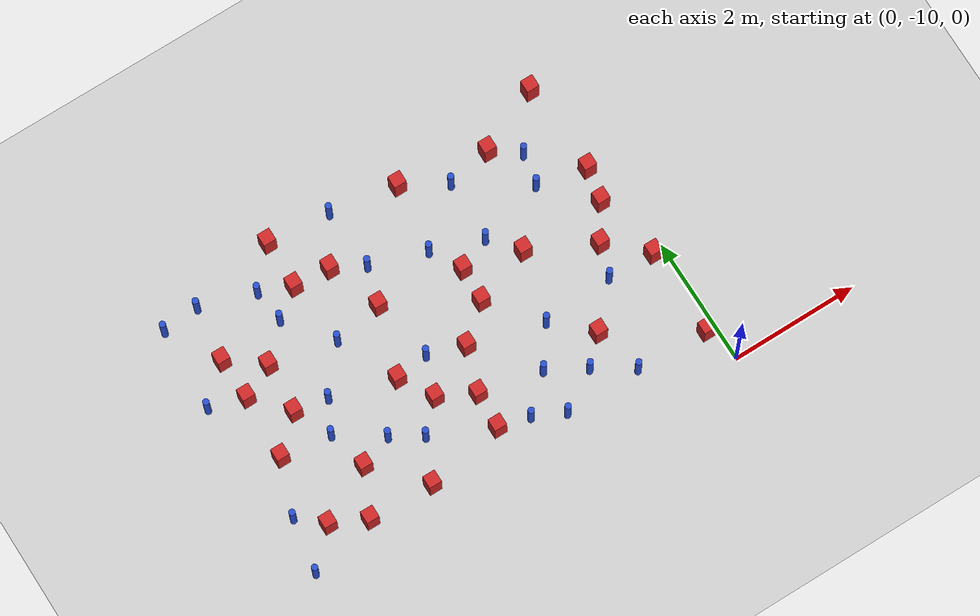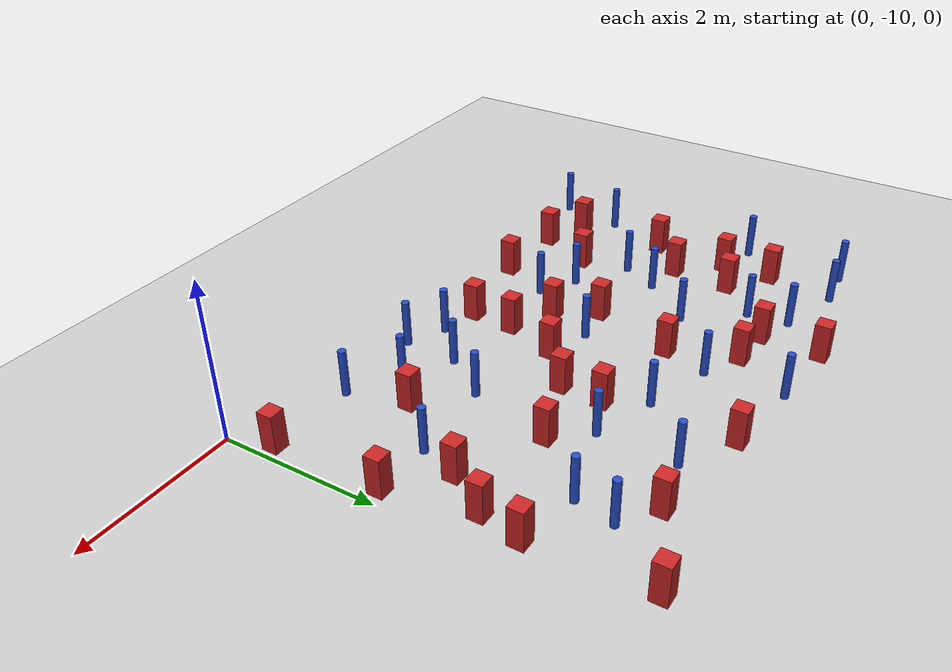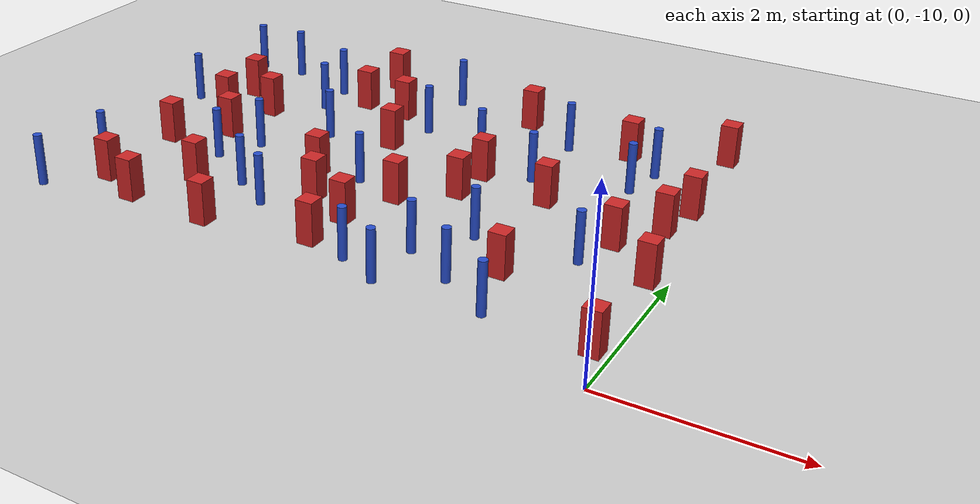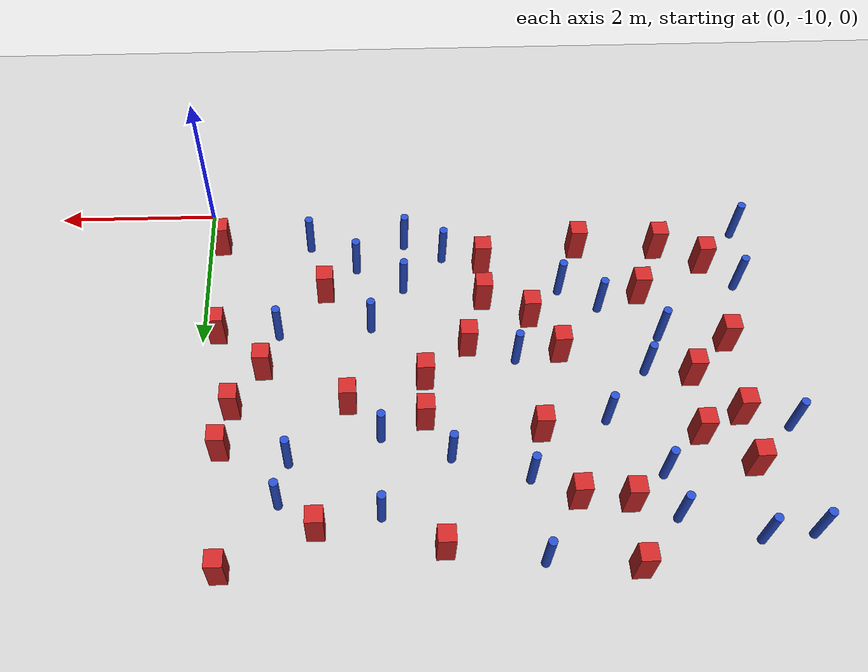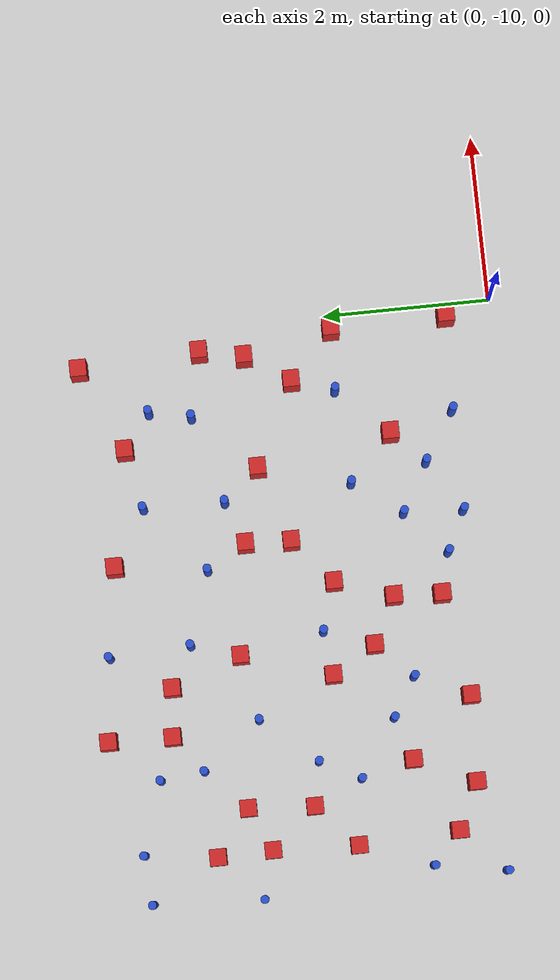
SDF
<sdf version="1.6">
 <world name="default">
  <model name="ground_plane">
   <static>1</static>
   <link name="link">
    <collision name="collision">
     <geometry><plane><normal>0 0 1</normal><size>100 100</size></plane></geometry>
     <surface><friction><ode><mu>100</mu><mu2>50</mu2></ode></friction></surface>
    </collision>
    <visual name="visual">
     <cast_shadows>0</cast_shadows>
     <geometry><plane><normal>0 0 1</normal><size>100 100</size></plane></geometry>
     <material>
      <ambient>1.0 1.0 1.0 1.0</ambient>
      <diffuse>0.8 0.8 0.8 1.0</diffuse>
      <specular>0.01 0.01 0.01 1.000000</specular>
     </material>
    </visual>
   </link>
  </model>
  <model name="square_post_obstacle6">
   <static>true</static>
   <pose>-0.314412904541 -6.473569721 1.91545236811e-07 -7.35059704564e-06 1.12565212e-07 2.39332434364e-05</pose>
   <link name="link">
    <pose>0 0 0.25 0 -0 0</pose>
    <inertial>
     <mass>100</mass>
     <inertia>
      <ixx>0.166667</ixx>
      <ixy>0</ixy>
      <ixz>0</ixz>
      <iyy>0.166667</iyy>
      <iyz>0</iyz>
      <izz>0.166667</izz>
     </inertia>
    </inertial>
    <collision name="collision"><geometry><box><size>.2 .2 .5</size></box></geometry></collision>
    <visual name="visual">
     <geometry><box><size>.2 .2 .5</size></box></geometry>
     <material>
      <script><name>Gazebo/Red</name><uri>file://media/materials/scripts/gazebo.material</uri></script>
     </material>
    </visual>
   </link>
  </model>
  <model name="square_post_obstacle8">
   <static>true</static>
   <pose>-5.78072870334 -6.53050007422 1.91545236811e-07 -7.35059704564e-06 1.12565212e-07 2.39332434364e-05</pose>
   <link name="link">
    <pose>0 0 0.25 0 -0 0</pose>
    <inertial>
     <mass>100</mass>
     <inertia>
      <ixx>0.166667</ixx>
      <ixy>0</ixy>
      <ixz>0</ixz>
      <iyy>0.166667</iyy>
      <iyz>0</iyz>
      <izz>0.166667</izz>
     </inertia>
    </inertial>
    <collision name="collision"><geometry><box><size>.2 .2 .5</size></box></geometry></collision>
    <visual name="visual">
     <geometry><box><size>.2 .2 .5</size></box></geometry>
     <material>
      <script><name>Gazebo/Red</name><uri>file://media/materials/scripts/gazebo.material</uri></script>
     </material>
    </visual>
   </link>
  </model>
  <model name="square_post_obstacle11">
   <static>true</static>
   <pose>-1.40964956682 -5.48230653608 1.91545236811e-07 -7.35059704564e-06 1.12565212e-07 2.39332434364e-05</pose>
   <link name="link">
    <pose>0 0 0.25 0 -0 0</pose>
    <inertial>
     <mass>100</mass>
     <inertia>
      <ixx>0.166667</ixx>
      <ixy>0</ixy>
      <ixz>0</ixz>
      <iyy>0.166667</iyy>
      <iyz>0</iyz>
      <izz>0.166667</izz>
     </inertia>
    </inertial>
    <collision name="collision"><geometry><box><size>.2 .2 .5</size></box></geometry></collision>
    <visual name="visual">
     <geometry><box><size>.2 .2 .5</size></box></geometry>
     <material>
      <script><name>Gazebo/Red</name><uri>file://media/materials/scripts/gazebo.material</uri></script>
     </material>
    </visual>
   </link>
  </model>
  <model name="square_post_obstacle16">
   <static>true</static>
   <pose>-6.29691629404 -6.77360591262 1.91545236811e-07 -7.35059704564e-06 1.12565212e-07 2.39332434364e-05</pose>
   <link name="link">
    <pose>0 0 0.25 0 -0 0</pose>
    <inertial>
     <mass>100</mass>
     <inertia>
      <ixx>0.166667</ixx>
      <ixy>0</ixy>
      <ixz>0</ixz>
      <iyy>0.166667</iyy>
      <iyz>0</iyz>
      <izz>0.166667</izz>
     </inertia>
    </inertial>
    <collision name="collision"><geometry><box><size>.2 .2 .5</size></box></geometry></collision>
    <visual name="visual">
     <geometry><box><size>.2 .2 .5</size></box></geometry>
     <material>
      <script><name>Gazebo/Red</name><uri>file://media/materials/scripts/gazebo.material</uri></script>
     </material>
    </visual>
   </link>
  </model>
  <model name="square_post_obstacle20">
   <static>true</static>
   <pose>-0.168599659876 -9.45162408497 1.91545236811e-07 -7.35059704564e-06 1.12565212e-07 2.39332434364e-05</pose>
   <link name="link">
    <pose>0 0 0.25 0 -0 0</pose>
    <inertial>
     <mass>100</mass>
     <inertia>
      <ixx>0.166667</ixx>
      <ixy>0</ixy>
      <ixz>0</ixz>
      <iyy>0.166667</iyy>
      <iyz>0</iyz>
      <izz>0.166667</izz>
     </inertia>
    </inertial>
    <collision name="collision"><geometry><box><size>.2 .2 .5</size></box></geometry></collision>
    <visual name="visual">
     <geometry><box><size>.2 .2 .5</size></box></geometry>
     <material>
      <script><name>Gazebo/Red</name><uri>file://media/materials/scripts/gazebo.material</uri></script>
     </material>
    </visual>
   </link>
  </model>
  <model name="pole_obstacle16">
   <static>true</static>
   <pose>-0.988957043239 -5.80576864988 7.38925637345e-09 -8.47170692799e-08 1.2497676509e-08 -1.74513093015e-07</pose>
   <link name="link">
    <pose>0 0 0.3 0 -0 0</pose>
    <inertial>
     <mass>1</mass>
     <inertia><ixx>0.145833</ixx><ixy>0</ixy><ixz>0</ixz><iyy>0.145833</iyy><iyz>0</iyz><izz>0.125</izz></inertia>
    </inertial>
    <collision name="collision">
     <geometry><cylinder><radius>0.05</radius><length>.6</length></cylinder></geometry>
    </collision>
    <visual name="visual">
     <geometry><cylinder><radius>0.05</radius><length>.6</length></cylinder></geometry>
     <material>
      <script><name>Gazebo/Blue</name><uri>file://media/materials/scripts/gazebo.material</uri></script>
     </material>
    </visual>
   </link>
  </model>
  <model name="square_post_obstacle26">
   <static>true</static>
   <pose>-3.97675487814 -6.61443142377 1.91545236811e-07 -7.35059704564e-06 1.12565212e-07 2.39332434364e-05</pose>
   <link name="link">
    <pose>0 0 0.25 0 -0 0</pose>
    <inertial>
     <mass>100</mass>
     <inertia>
      <ixx>0.166667</ixx>
      <ixy>0</ixy>
      <ixz>0</ixz>
      <iyy>0.166667</iyy>
      <iyz>0</iyz>
      <izz>0.166667</izz>
     </inertia>
    </inertial>
    <collision name="collision"><geometry><box><size>.2 .2 .5</size></box></geometry></collision>
    <visual name="visual">
     <geometry><box><size>.2 .2 .5</size></box></geometry>
     <material>
      <script><name>Gazebo/Red</name><uri>file://media/materials/scripts/gazebo.material</uri></script>
     </material>
    </visual>
   </link>
  </model>
  <model name="pole_obstacle18">
   <static>true</static>
   <pose>-1.30812867403 -9.41330701959 7.38925637345e-09 -8.47170692798e-08 1.24976764881e-08 -1.74513093027e-07</pose>
   <link name="link">
    <pose>0 0 0.3 0 -0 0</pose>
    <inertial>
     <mass>1</mass>
     <inertia><ixx>0.145833</ixx><ixy>0</ixy><ixz>0</ixz><iyy>0.145833</iyy><iyz>0</iyz><izz>0.125</izz></inertia>
    </inertial>
    <collision name="collision">
     <geometry><cylinder><radius>0.05</radius><length>.6</length></cylinder></geometry>
    </collision>
    <visual name="visual">
     <geometry><cylinder><radius>0.05</radius><length>.6</length></cylinder></geometry>
     <material>
      <script><name>Gazebo/Blue</name><uri>file://media/materials/scripts/gazebo.material</uri></script>
     </material>
    </visual>
   </link>
  </model>
  <model name="pole_obstacle24">
   <static>true</static>
   <pose>-3.85660867176 -5.06886521838 7.38925637345e-09 -8.47170692794e-08 1.24976764468e-08 -1.7451309304e-07</pose>
   <link name="link">
    <pose>0 0 0.3 0 -0 0</pose>
    <inertial>
     <mass>1</mass>
     <inertia><ixx>0.145833</ixx><ixy>0</ixy><ixz>0</ixz><iyy>0.145833</iyy><iyz>0</iyz><izz>0.125</izz></inertia>
    </inertial>
    <collision name="collision">
     <geometry><cylinder><radius>0.05</radius><length>.6</length></cylinder></geometry>
    </collision>
    <visual name="visual">
     <geometry><cylinder><radius>0.05</radius><length>.6</length></cylinder></geometry>
     <material>
      <script><name>Gazebo/Blue</name><uri>file://media/materials/scripts/gazebo.material</uri></script>
     </material>
    </visual>
   </link>
  </model>
  <model name="pole_obstacle25">
   <static>true</static>
   <pose>-0.934979429972 -8.04584384701 7.38925637345e-09 -8.47170692807e-08 1.24976765559e-08 -1.74513093001e-07</pose>
   <link name="link">
    <pose>0 0 0.3 0 -0 0</pose>
    <inertial>
     <mass>1</mass>
     <inertia><ixx>0.145833</ixx><ixy>0</ixy><ixz>0</ixz><iyy>0.145833</iyy><iyz>0</iyz><izz>0.125</izz></inertia>
    </inertial>
    <collision name="collision">
     <geometry><cylinder><radius>0.05</radius><length>.6</length></cylinder></geometry>
    </collision>
    <visual name="visual">
     <geometry><cylinder><radius>0.05</radius><length>.6</length></cylinder></geometry>
     <material>
      <script><name>Gazebo/Blue</name><uri>file://media/materials/scripts/gazebo.material</uri></script>
     </material>
    </visual>
   </link>
  </model>
  <model name="square_post_obstacle33">
   <static>true</static>
   <pose>-4.31258937845 -7.6849698161 1.91545236811e-07 -7.35059704564e-06 1.12565212e-07 2.39332434364e-05</pose>
   <link name="link">
    <pose>0 0 0.25 0 -0 0</pose>
    <inertial>
     <mass>100</mass>
     <inertia>
      <ixx>0.166667</ixx>
      <ixy>0</ixy>
      <ixz>0</ixz>
      <iyy>0.166667</iyy>
      <iyz>0</iyz>
      <izz>0.166667</izz>
     </inertia>
    </inertial>
    <collision name="collision"><geometry><box><size>.2 .2 .5</size></box></geometry></collision>
    <visual name="visual">
     <geometry><box><size>.2 .2 .5</size></box></geometry>
     <material>
      <script><name>Gazebo/Red</name><uri>file://media/materials/scripts/gazebo.material</uri></script>
     </material>
    </visual>
   </link>
  </model>
  <model name="square_post_obstacle34">
   <static>true</static>
   <pose>-2.67959772439 -7.34721726852 1.91545236811e-07 -7.35059704564e-06 1.12565212e-07 2.39332434364e-05</pose>
   <link name="link">
    <pose>0 0 0.25 0 -0 0</pose>
    <inertial>
     <mass>100</mass>
     <inertia>
      <ixx>0.166667</ixx>
      <ixy>0</ixy>
      <ixz>0</ixz>
      <iyy>0.166667</iyy>
      <iyz>0</iyz>
      <izz>0.166667</izz>
     </inertia>
    </inertial>
    <collision name="collision"><geometry><box><size>.2 .2 .5</size></box></geometry></collision>
    <visual name="visual">
     <geometry><box><size>.2 .2 .5</size></box></geometry>
     <material>
      <script><name>Gazebo/Red</name><uri>file://media/materials/scripts/gazebo.material</uri></script>
     </material>
    </visual>
   </link>
  </model>
  <model name="square_post_obstacle44">
   <static>true</static>
   <pose>-4.84492656998 -4.96853906696 1.91545236811e-07 -7.35059704564e-06 1.12565212e-07 2.39332434364e-05</pose>
   <link name="link">
    <pose>0 0 0.25 0 -0 0</pose>
    <inertial>
     <mass>100</mass>
     <inertia>
      <ixx>0.166667</ixx>
      <ixy>0</ixy>
      <ixz>0</ixz>
      <iyy>0.166667</iyy>
      <iyz>0</iyz>
      <izz>0.166667</izz>
     </inertia>
    </inertial>
    <collision name="collision"><geometry><box><size>.2 .2 .5</size></box></geometry></collision>
    <visual name="visual">
     <geometry><box><size>.2 .2 .5</size></box></geometry>
     <material>
      <script><name>Gazebo/Red</name><uri>file://media/materials/scripts/gazebo.material</uri></script>
     </material>
    </visual>
   </link>
  </model>
  <model name="square_post_obstacle51">
   <static>true</static>
   <pose>-4.71019757369 -9.27618763411 1.91545236811e-07 -7.35059704564e-06 1.12565212e-07 2.39332434364e-05</pose>
   <link name="link">
    <pose>0 0 0.25 0 -0 0</pose>
    <inertial>
     <mass>100</mass>
     <inertia>
      <ixx>0.166667</ixx>
      <ixy>0</ixy>
      <ixz>0</ixz>
      <iyy>0.166667</iyy>
      <iyz>0</iyz>
      <izz>0.166667</izz>
     </inertia>
    </inertial>
    <collision name="collision"><geometry><box><size>.2 .2 .5</size></box></geometry></collision>
    <visual name="visual">
     <geometry><box><size>.2 .2 .5</size></box></geometry>
     <material>
      <script><name>Gazebo/Red</name><uri>file://media/materials/scripts/gazebo.material</uri></script>
     </material>
    </visual>
   </link>
  </model>
  <model name="square_post_obstacle54">
   <static>true</static>
   <pose>-5.39855343872 -8.52354060329 1.91545236811e-07 -7.35059704564e-06 1.12565212e-07 2.39332434364e-05</pose>
   <link name="link">
    <pose>0 0 0.25 0 -0 0</pose>
    <inertial>
     <mass>100</mass>
     <inertia>
      <ixx>0.166667</ixx>
      <ixy>0</ixy>
      <ixz>0</ixz>
      <iyy>0.166667</iyy>
      <iyz>0</iyz>
      <izz>0.166667</izz>
     </inertia>
    </inertial>
    <collision name="collision"><geometry><box><size>.2 .2 .5</size></box></geometry></collision>
    <visual name="visual">
     <geometry><box><size>.2 .2 .5</size></box></geometry>
     <material>
      <script><name>Gazebo/Red</name><uri>file://media/materials/scripts/gazebo.material</uri></script>
     </material>
    </visual>
   </link>
  </model>
  <model name="square_post_obstacle79">
   <static>true</static>
   <pose>-4.86078657247 -5.72435086123 1.91545236811e-07 -7.35059704564e-06 1.12565212e-07 2.39332434364e-05</pose>
   <link name="link">
    <pose>0 0 0.25 0 -0 0</pose>
    <inertial>
     <mass>100</mass>
     <inertia>
      <ixx>0.166667</ixx>
      <ixy>0</ixy>
      <ixz>0</ixz>
      <iyy>0.166667</iyy>
      <iyz>0</iyz>
      <izz>0.166667</izz>
     </inertia>
    </inertial>
    <collision name="collision"><geometry><box><size>.2 .2 .5</size></box></geometry></collision>
    <visual name="visual">
     <geometry><box><size>.2 .2 .5</size></box></geometry>
     <material>
      <script><name>Gazebo/Red</name><uri>file://media/materials/scripts/gazebo.material</uri></script>
     </material>
    </visual>
   </link>
  </model>
  <model name="pole_obstacle83">
   <static>true</static>
   <pose>-6.80312424011 -9.49591714387 7.38925637345e-09 -8.471706928e-08 1.24976765081e-08 -1.74513093015e-07</pose>
   <link name="link">
    <pose>0 0 0.3 0 -0 0</pose>
    <inertial>
     <mass>1</mass>
     <inertia><ixx>0.145833</ixx><ixy>0</ixy><ixz>0</ixz><iyy>0.145833</iyy><iyz>0</iyz><izz>0.125</izz></inertia>
    </inertial>
    <collision name="collision">
     <geometry><cylinder><radius>0.05</radius><length>.6</length></cylinder></geometry>
    </collision>
    <visual name="visual">
     <geometry><cylinder><radius>0.05</radius><length>.6</length></cylinder></geometry>
     <material>
      <script><name>Gazebo/Blue</name><uri>file://media/materials/scripts/gazebo.material</uri></script>
     </material>
    </visual>
   </link>
  </model>
  <model name="pole_obstacle90">
   <static>true</static>
   <pose>-4.75607005969 -6.75959815398 7.38925637345e-09 -8.47170692796e-08 1.24976764786e-08 -1.74513093032e-07</pose>
   <link name="link">
    <pose>0 0 0.3 0 -0 0</pose>
    <inertial>
     <mass>1</mass>
     <inertia><ixx>0.145833</ixx><ixy>0</ixy><ixz>0</ixz><iyy>0.145833</iyy><iyz>0</iyz><izz>0.125</izz></inertia>
    </inertial>
    <collision name="collision">
     <geometry><cylinder><radius>0.05</radius><length>.6</length></cylinder></geometry>
    </collision>
    <visual name="visual">
     <geometry><cylinder><radius>0.05</radius><length>.6</length></cylinder></geometry>
     <material>
      <script><name>Gazebo/Blue</name><uri>file://media/materials/scripts/gazebo.material</uri></script>
     </material>
    </visual>
   </link>
  </model>
  <model name="pole_obstacle93">
   <static>true</static>
   <pose>-5.35724060562 -5.53326961515 7.38925637345e-09 -8.47170692796e-08 1.24976764786e-08 -1.74513093032e-07</pose>
   <link name="link">
    <pose>0 0 0.3 0 -0 0</pose>
    <inertial>
     <mass>1</mass>
     <inertia><ixx>0.145833</ixx><ixy>0</ixy><ixz>0</ixz><iyy>0.145833</iyy><iyz>0</iyz><izz>0.125</izz></inertia>
    </inertial>
    <collision name="collision">
     <geometry><cylinder><radius>0.05</radius><length>.6</length></cylinder></geometry>
    </collision>
    <visual name="visual">
     <geometry><cylinder><radius>0.05</radius><length>.6</length></cylinder></geometry>
     <material>
      <script><name>Gazebo/Blue</name><uri>file://media/materials/scripts/gazebo.material</uri></script>
     </material>
    </visual>
   </link>
  </model>
  <model name="square_post_obstacle87">
   <static>true</static>
   <pose>-0.768279841867 -7.53531447641 1.91545236811e-07 -7.35059704564e-06 1.12565212e-07 2.39332434364e-05</pose>
   <link name="link">
    <pose>0 0 0.25 0 -0 0</pose>
    <inertial>
     <mass>100</mass>
     <inertia>
      <ixx>0.166667</ixx>
      <ixy>0</ixy>
      <ixz>0</ixz>
      <iyy>0.166667</iyy>
      <iyz>0</iyz>
      <izz>0.166667</izz>
     </inertia>
    </inertial>
    <collision name="collision"><geometry><box><size>.2 .2 .5</size></box></geometry></collision>
    <visual name="visual">
     <geometry><box><size>.2 .2 .5</size></box></geometry>
     <material>
      <script><name>Gazebo/Red</name><uri>file://media/materials/scripts/gazebo.material</uri></script>
     </material>
    </visual>
   </link>
  </model>
  <model name="pole_obstacle98">
   <static>true</static>
   <pose>-2.93355644269 -6.32455213967 7.38925637345e-09 -8.47170692798e-08 1.24976765033e-08 -1.74513093019e-07</pose>
   <link name="link">
    <pose>0 0 0.3 0 -0 0</pose>
    <inertial>
     <mass>1</mass>
     <inertia><ixx>0.145833</ixx><ixy>0</ixy><ixz>0</ixz><iyy>0.145833</iyy><iyz>0</iyz><izz>0.125</izz></inertia>
    </inertial>
    <collision name="collision">
     <geometry><cylinder><radius>0.05</radius><length>.6</length></cylinder></geometry>
    </collision>
    <visual name="visual">
     <geometry><cylinder><radius>0.05</radius><length>.6</length></cylinder></geometry>
     <material>
      <script><name>Gazebo/Blue</name><uri>file://media/materials/scripts/gazebo.material</uri></script>
     </material>
    </visual>
   </link>
  </model>
  <model name="pole_obstacle104">
   <static>true</static>
   <pose>-2.06164450153 -8.12606021757 7.38925637345e-09 -8.47170692793e-08 1.24976764408e-08 -1.74513093041e-07</pose>
   <link name="link">
    <pose>0 0 0.3 0 -0 0</pose>
    <inertial>
     <mass>1</mass>
     <inertia><ixx>0.145833</ixx><ixy>0</ixy><ixz>0</ixz><iyy>0.145833</iyy><iyz>0</iyz><izz>0.125</izz></inertia>
    </inertial>
    <collision name="collision">
     <geometry><cylinder><radius>0.05</radius><length>.6</length></cylinder></geometry>
    </collision>
    <visual name="visual">
     <geometry><cylinder><radius>0.05</radius><length>.6</length></cylinder></geometry>
     <material>
      <script><name>Gazebo/Blue</name><uri>file://media/materials/scripts/gazebo.material</uri></script>
     </material>
    </visual>
   </link>
  </model>
  <model name="pole_obstacle108">
   <static>true</static>
   <pose>-5.29847077119 -6.0573890956 7.38925637345e-09 -8.47170692796e-08 1.24976764786e-08 -1.74513093032e-07</pose>
   <link name="link">
    <pose>0 0 0.3 0 -0 0</pose>
    <inertial>
     <mass>1</mass>
     <inertia><ixx>0.145833</ixx><ixy>0</ixy><ixz>0</ixz><iyy>0.145833</iyy><iyz>0</iyz><izz>0.125</izz></inertia>
    </inertial>
    <collision name="collision">
     <geometry><cylinder><radius>0.05</radius><length>.6</length></cylinder></geometry>
    </collision>
    <visual name="visual">
     <geometry><cylinder><radius>0.05</radius><length>.6</length></cylinder></geometry>
     <material>
      <script><name>Gazebo/Blue</name><uri>file://media/materials/scripts/gazebo.material</uri></script>
     </material>
    </visual>
   </link>
  </model>
  <model name="pole_obstacle116">
   <static>true</static>
   <pose>-5.56209451328 -7.89873725427 7.38925637345e-09 -8.47170692796e-08 1.24976764786e-08 -1.74513093032e-07</pose>
   <link name="link">
    <pose>0 0 0.3 0 -0 0</pose>
    <inertial>
     <mass>1</mass>
     <inertia><ixx>0.145833</ixx><ixy>0</ixy><ixz>0</ixz><iyy>0.145833</iyy><iyz>0</iyz><izz>0.125</izz></inertia>
    </inertial>
    <collision name="collision">
     <geometry><cylinder><radius>0.05</radius><length>.6</length></cylinder></geometry>
    </collision>
    <visual name="visual">
     <geometry><cylinder><radius>0.05</radius><length>.6</length></cylinder></geometry>
     <material>
      <script><name>Gazebo/Blue</name><uri>file://media/materials/scripts/gazebo.material</uri></script>
     </material>
    </visual>
   </link>
  </model>
  <model name="square_post_obstacle109">
   <static>true</static>
   <pose>-1.77033462593 -7.03571893373 1.91545236811e-07 -7.35059704564e-06 1.12565212e-07 2.39332434364e-05</pose>
   <link name="link">
    <pose>0 0 0.25 0 -0 0</pose>
    <inertial>
     <mass>100</mass>
     <inertia>
      <ixx>0.166667</ixx>
      <ixy>0</ixy>
      <ixz>0</ixz>
      <iyy>0.166667</iyy>
      <iyz>0</iyz>
      <izz>0.166667</izz>
     </inertia>
    </inertial>
    <collision name="collision"><geometry><box><size>.2 .2 .5</size></box></geometry></collision>
    <visual name="visual">
     <geometry><box><size>.2 .2 .5</size></box></geometry>
     <material>
      <script><name>Gazebo/Red</name><uri>file://media/materials/scripts/gazebo.material</uri></script>
     </material>
    </visual>
   </link>
  </model>
  <model name="pole_obstacle121">
   <static>true</static>
   <pose>-1.89489620973 -9.04016715943 7.38925637345e-09 -8.47170692798e-08 1.24976764881e-08 -1.74513093027e-07</pose>
   <link name="link">
    <pose>0 0 0.3 0 -0 0</pose>
    <inertial>
     <mass>1</mass>
     <inertia><ixx>0.145833</ixx><ixy>0</ixy><ixz>0</ixz><iyy>0.145833</iyy><iyz>0</iyz><izz>0.125</izz></inertia>
    </inertial>
    <collision name="collision">
     <geometry><cylinder><radius>0.05</radius><length>.6</length></cylinder></geometry>
    </collision>
    <visual name="visual">
     <geometry><cylinder><radius>0.05</radius><length>.6</length></cylinder></geometry>
     <material>
      <script><name>Gazebo/Blue</name><uri>file://media/materials/scripts/gazebo.material</uri></script>
     </material>
    </visual>
   </link>
  </model>
  <model name="pole_obstacle123">
   <static>true</static>
   <pose>-3.78758304065 -7.61913452715 7.38925637345e-09 -8.47170692798e-08 1.24976765033e-08 -1.74513093019e-07</pose>
   <link name="link">
    <pose>0 0 0.3 0 -0 0</pose>
    <inertial>
     <mass>1</mass>
     <inertia><ixx>0.145833</ixx><ixy>0</ixy><ixz>0</ixz><iyy>0.145833</iyy><iyz>0</iyz><izz>0.125</izz></inertia>
    </inertial>
    <collision name="collision">
     <geometry><cylinder><radius>0.05</radius><length>.6</length></cylinder></geometry>
    </collision>
    <visual name="visual">
     <geometry><cylinder><radius>0.05</radius><length>.6</length></cylinder></geometry>
     <material>
      <script><name>Gazebo/Blue</name><uri>file://media/materials/scripts/gazebo.material</uri></script>
     </material>
    </visual>
   </link>
  </model>
  <model name="pole_obstacle129">
   <static>true</static>
   <pose>-2.99116245288 -9.19319185652 7.38925637345e-09 -8.47170692793e-08 1.24976764408e-08 -1.74513093041e-07</pose>
   <link name="link">
    <pose>0 0 0.3 0 -0 0</pose>
    <inertial>
     <mass>1</mass>
     <inertia><ixx>0.145833</ixx><ixy>0</ixy><ixz>0</ixz><iyy>0.145833</iyy><iyz>0</iyz><izz>0.125</izz></inertia>
    </inertial>
    <collision name="collision">
     <geometry><cylinder><radius>0.05</radius><length>.6</length></cylinder></geometry>
    </collision>
    <visual name="visual">
     <geometry><cylinder><radius>0.05</radius><length>.6</length></cylinder></geometry>
     <material>
      <script><name>Gazebo/Blue</name><uri>file://media/materials/scripts/gazebo.material</uri></script>
     </material>
    </visual>
   </link>
  </model>
  <model name="pole_obstacle132">
   <static>true</static>
   <pose>-6.21557122804 -5.26115105574 7.38925637345e-09 -8.47170692796e-08 1.24976764786e-08 -1.74513093032e-07</pose>
   <link name="link">
    <pose>0 0 0.3 0 -0 0</pose>
    <inertial>
     <mass>1</mass>
     <inertia><ixx>0.145833</ixx><ixy>0</ixy><ixz>0</ixz><iyy>0.145833</iyy><iyz>0</iyz><izz>0.125</izz></inertia>
    </inertial>
    <collision name="collision">
     <geometry><cylinder><radius>0.05</radius><length>.6</length></cylinder></geometry>
    </collision>
    <visual name="visual">
     <geometry><cylinder><radius>0.05</radius><length>.6</length></cylinder></geometry>
     <material>
      <script><name>Gazebo/Blue</name><uri>file://media/materials/scripts/gazebo.material</uri></script>
     </material>
    </visual>
   </link>
  </model>
  <model name="square_post_obstacle118">
   <static>true</static>
   <pose>-4.00478361583 -8.20778416112 1.91545236811e-07 -7.35059704564e-06 1.12565212e-07 2.39332434364e-05</pose>
   <link name="link">
    <pose>0 0 0.25 0 -0 0</pose>
    <inertial>
     <mass>100</mass>
     <inertia>
      <ixx>0.166667</ixx>
      <ixy>0</ixy>
      <ixz>0</ixz>
      <iyy>0.166667</iyy>
      <iyz>0</iyz>
      <izz>0.166667</izz>
     </inertia>
    </inertial>
    <collision name="collision"><geometry><box><size>.2 .2 .5</size></box></geometry></collision>
    <visual name="visual">
     <geometry><box><size>.2 .2 .5</size></box></geometry>
     <material>
      <script><name>Gazebo/Red</name><uri>file://media/materials/scripts/gazebo.material</uri></script>
     </material>
    </visual>
   </link>
  </model>
  <model name="pole_obstacle138">
   <static>true</static>
   <pose>-2.47747607831 -8.71095470044 7.38925637345e-09 -8.47170692793e-08 1.24976764408e-08 -1.74513093041e-07</pose>
   <link name="link">
    <pose>0 0 0.3 0 -0 0</pose>
    <inertial>
     <mass>1</mass>
     <inertia><ixx>0.145833</ixx><ixy>0</ixy><ixz>0</ixz><iyy>0.145833</iyy><iyz>0</iyz><izz>0.125</izz></inertia>
    </inertial>
    <collision name="collision">
     <geometry><cylinder><radius>0.05</radius><length>.6</length></cylinder></geometry>
    </collision>
    <visual name="visual">
     <geometry><cylinder><radius>0.05</radius><length>.6</length></cylinder></geometry>
     <material>
      <script><name>Gazebo/Blue</name><uri>file://media/materials/scripts/gazebo.material</uri></script>
     </material>
    </visual>
   </link>
  </model>
  <model name="square_post_obstacle119">
   <static>true</static>
   <pose>-6.27838740973 -8.97854852874 1.91545236811e-07 -7.35059704564e-06 1.12565212e-07 2.39332434364e-05</pose>
   <link name="link">
    <pose>0 0 0.25 0 -0 0</pose>
    <inertial>
     <mass>100</mass>
     <inertia>
      <ixx>0.166667</ixx>
      <ixy>0</ixy>
      <ixz>0</ixz>
      <iyy>0.166667</iyy>
      <iyz>0</iyz>
      <izz>0.166667</izz>
     </inertia>
    </inertial>
    <collision name="collision"><geometry><box><size>.2 .2 .5</size></box></geometry></collision>
    <visual name="visual">
     <geometry><box><size>.2 .2 .5</size></box></geometry>
     <material>
      <script><name>Gazebo/Red</name><uri>file://media/materials/scripts/gazebo.material</uri></script>
     </material>
    </visual>
   </link>
  </model>
  <model name="square_post_obstacle125">
   <static>true</static>
   <pose>-3.47970079604 -9.06307022789 1.91545236811e-07 -7.35059704564e-06 1.12565212e-07 2.39332434364e-05</pose>
   <link name="link">
    <pose>0 0 0.25 0 -0 0</pose>
    <inertial>
     <mass>100</mass>
     <inertia>
      <ixx>0.166667</ixx>
      <ixy>0</ixy>
      <ixz>0</ixz>
      <iyy>0.166667</iyy>
      <iyz>0</iyz>
      <izz>0.166667</izz>
     </inertia>
    </inertial>
    <collision name="collision"><geometry><box><size>.2 .2 .5</size></box></geometry></collision>
    <visual name="visual">
     <geometry><box><size>.2 .2 .5</size></box></geometry>
     <material>
      <script><name>Gazebo/Red</name><uri>file://media/materials/scripts/gazebo.material</uri></script>
     </material>
    </visual>
   </link>
  </model>
  <model name="square_post_obstacle129">
   <static>true</static>
   <pose>-5.83234866847 -7.31344361337 1.91545236811e-07 -7.35059704564e-06 1.12565212e-07 2.39332434364e-05</pose>
   <link name="link">
    <pose>0 0 0.25 0 -0 0</pose>
    <inertial>
     <mass>100</mass>
     <inertia>
      <ixx>0.166667</ixx>
      <ixy>0</ixy>
      <ixz>0</ixz>
      <iyy>0.166667</iyy>
      <iyz>0</iyz>
      <izz>0.166667</izz>
     </inertia>
    </inertial>
    <collision name="collision"><geometry><box><size>.2 .2 .5</size></box></geometry></collision>
    <visual name="visual">
     <geometry><box><size>.2 .2 .5</size></box></geometry>
     <material>
      <script><name>Gazebo/Red</name><uri>file://media/materials/scripts/gazebo.material</uri></script>
     </material>
    </visual>
   </link>
  </model>
  <model name="square_post_obstacle130">
   <static>true</static>
   <pose>-4.28406136314 -5.77384121092 1.91545236811e-07 -7.35059704564e-06 1.12565212e-07 2.39332434364e-05</pose>
   <link name="link">
    <pose>0 0 0.25 0 -0 0</pose>
    <inertial>
     <mass>100</mass>
     <inertia>
      <ixx>0.166667</ixx>
      <ixy>0</ixy>
      <ixz>0</ixz>
      <iyy>0.166667</iyy>
      <iyz>0</iyz>
      <izz>0.166667</izz>
     </inertia>
    </inertial>
    <collision name="collision"><geometry><box><size>.2 .2 .5</size></box></geometry></collision>
    <visual name="visual">
     <geometry><box><size>.2 .2 .5</size></box></geometry>
     <material>
      <script><name>Gazebo/Red</name><uri>file://media/materials/scripts/gazebo.material</uri></script>
     </material>
    </visual>
   </link>
  </model>
  <model name="square_post_obstacle133">
   <static>true</static>
   <pose>-3.44986947254 -8.49113025682 1.91545236811e-07 -7.35059704564e-06 1.12565212e-07 2.39332434364e-05</pose>
   <link name="link">
    <pose>0 0 0.25 0 -0 0</pose>
    <inertial>
     <mass>100</mass>
     <inertia>
      <ixx>0.166667</ixx>
      <ixy>0</ixy>
      <ixz>0</ixz>
      <iyy>0.166667</iyy>
      <iyz>0</iyz>
      <izz>0.166667</izz>
     </inertia>
    </inertial>
    <collision name="collision"><geometry><box><size>.2 .2 .5</size></box></geometry></collision>
    <visual name="visual">
     <geometry><box><size>.2 .2 .5</size></box></geometry>
     <material>
      <script><name>Gazebo/Red</name><uri>file://media/materials/scripts/gazebo.material</uri></script>
     </material>
    </visual>
   </link>
  </model>
  <model name="pole_obstacle153">
   <static>true</static>
   <pose>-3.80233700134 -6.03752701245 7.38925637345e-09 -8.47170692798e-08 1.24976765033e-08 -1.74513093019e-07</pose>
   <link name="link">
    <pose>0 0 0.3 0 -0 0</pose>
    <inertial>
     <mass>1</mass>
     <inertia><ixx>0.145833</ixx><ixy>0</ixy><ixz>0</ixz><iyy>0.145833</iyy><iyz>0</iyz><izz>0.125</izz></inertia>
    </inertial>
    <collision name="collision">
     <geometry><cylinder><radius>0.05</radius><length>.6</length></cylinder></geometry>
    </collision>
    <visual name="visual">
     <geometry><cylinder><radius>0.05</radius><length>.6</length></cylinder></geometry>
     <material>
      <script><name>Gazebo/Blue</name><uri>file://media/materials/scripts/gazebo.material</uri></script>
     </material>
    </visual>
   </link>
  </model>
  <model name="square_post_obstacle149">
   <static>true</static>
   <pose>-2.65497548119 -6.80403922361 1.91545236811e-07 -7.35059704564e-06 1.12565212e-07 2.39332434364e-05</pose>
   <link name="link">
    <pose>0 0 0.25 0 -0 0</pose>
    <inertial>
     <mass>100</mass>
     <inertia>
      <ixx>0.166667</ixx>
      <ixy>0</ixy>
      <ixz>0</ixz>
      <iyy>0.166667</iyy>
      <iyz>0</iyz>
      <izz>0.166667</izz>
     </inertia>
    </inertial>
    <collision name="collision"><geometry><box><size>.2 .2 .5</size></box></geometry></collision>
    <visual name="visual">
     <geometry><box><size>.2 .2 .5</size></box></geometry>
     <material>
      <script><name>Gazebo/Red</name><uri>file://media/materials/scripts/gazebo.material</uri></script>
     </material>
    </visual>
   </link>
  </model>
  <model name="pole_obstacle158">
   <static>true</static>
   <pose>-6.79666927033 -5.30907871456 7.38925637345e-09 -8.47170692796e-08 1.24976764786e-08 -1.74513093032e-07</pose>
   <link name="link">
    <pose>0 0 0.3 0 -0 0</pose>
    <inertial>
     <mass>1</mass>
     <inertia><ixx>0.145833</ixx><ixy>0</ixy><ixz>0</ixz><iyy>0.145833</iyy><iyz>0</iyz><izz>0.125</izz></inertia>
    </inertial>
    <collision name="collision">
     <geometry><cylinder><radius>0.05</radius><length>.6</length></cylinder></geometry>
    </collision>
    <visual name="visual">
     <geometry><cylinder><radius>0.05</radius><length>.6</length></cylinder></geometry>
     <material>
      <script><name>Gazebo/Blue</name><uri>file://media/materials/scripts/gazebo.material</uri></script>
     </material>
    </visual>
   </link>
  </model>
  <model name="square_post_obstacle158">
   <static>true</static>
   <pose>-0.196838635281 -8.06607282174 1.91545236811e-07 -7.35059704564e-06 1.12565212e-07 2.39332434364e-05</pose>
   <link name="link">
    <pose>0 0 0.25 0 -0 0</pose>
    <inertial>
     <mass>100</mass>
     <inertia>
      <ixx>0.166667</ixx>
      <ixy>0</ixy>
      <ixz>0</ixz>
      <iyy>0.166667</iyy>
      <iyz>0</iyz>
      <izz>0.166667</izz>
     </inertia>
    </inertial>
    <collision name="collision"><geometry><box><size>.2 .2 .5</size></box></geometry></collision>
    <visual name="visual">
     <geometry><box><size>.2 .2 .5</size></box></geometry>
     <material>
      <script><name>Gazebo/Red</name><uri>file://media/materials/scripts/gazebo.material</uri></script>
     </material>
    </visual>
   </link>
  </model>
  <model name="pole_obstacle177">
   <static>true</static>
   <pose>-2.14418086305 -6.60470720475 7.38925637345e-09 -8.47170692798e-08 1.24976765033e-08 -1.74513093019e-07</pose>
   <link name="link">
    <pose>0 0 0.3 0 -0 0</pose>
    <inertial>
     <mass>1</mass>
     <inertia><ixx>0.145833</ixx><ixy>0</ixy><ixz>0</ixz><iyy>0.145833</iyy><iyz>0</iyz><izz>0.125</izz></inertia>
    </inertial>
    <collision name="collision">
     <geometry><cylinder><radius>0.05</radius><length>.6</length></cylinder></geometry>
    </collision>
    <visual name="visual">
     <geometry><cylinder><radius>0.05</radius><length>.6</length></cylinder></geometry>
     <material>
      <script><name>Gazebo/Blue</name><uri>file://media/materials/scripts/gazebo.material</uri></script>
     </material>
    </visual>
   </link>
  </model>
  <model name="pole_obstacle178">
   <static>true</static>
   <pose>-4.42402189181 -8.63707230219 7.38925637345e-09 -8.471706928e-08 1.24976765081e-08 -1.74513093015e-07</pose>
   <link name="link">
    <pose>0 0 0.3 0 -0 0</pose>
    <inertial>
     <mass>1</mass>
     <inertia><ixx>0.145833</ixx><ixy>0</ixy><ixz>0</ixz><iyy>0.145833</iyy><iyz>0</iyz><izz>0.125</izz></inertia>
    </inertial>
    <collision name="collision">
     <geometry><cylinder><radius>0.05</radius><length>.6</length></cylinder></geometry>
    </collision>
    <visual name="visual">
     <geometry><cylinder><radius>0.05</radius><length>.6</length></cylinder></geometry>
     <material>
      <script><name>Gazebo/Blue</name><uri>file://media/materials/scripts/gazebo.material</uri></script>
     </material>
    </visual>
   </link>
  </model>
  <model name="square_post_obstacle173">
   <static>true</static>
   <pose>-0.422541174121 -7.00263536726 1.91545236811e-07 -7.35059704564e-06 1.12565212e-07 2.39332434364e-05</pose>
   <link name="link">
    <pose>0 0 0.25 0 -0 0</pose>
    <inertial>
     <mass>100</mass>
     <inertia>
      <ixx>0.166667</ixx>
      <ixy>0</ixy>
      <ixz>0</ixz>
      <iyy>0.166667</iyy>
      <iyz>0</iyz>
      <izz>0.166667</izz>
     </inertia>
    </inertial>
    <collision name="collision"><geometry><box><size>.2 .2 .5</size></box></geometry></collision>
    <visual name="visual">
     <geometry><box><size>.2 .2 .5</size></box></geometry>
     <material>
      <script><name>Gazebo/Red</name><uri>file://media/materials/scripts/gazebo.material</uri></script>
     </material>
    </visual>
   </link>
  </model>
  <model name="square_post_obstacle176">
   <static>true</static>
   <pose>-2.79298538878 -5.23197864336 1.91545236811e-07 -7.35059704564e-06 1.12565212e-07 2.39332434364e-05</pose>
   <link name="link">
    <pose>0 0 0.25 0 -0 0</pose>
    <inertial>
     <mass>100</mass>
     <inertia>
      <ixx>0.166667</ixx>
      <ixy>0</ixy>
      <ixz>0</ixz>
      <iyy>0.166667</iyy>
      <iyz>0</iyz>
      <izz>0.166667</izz>
     </inertia>
    </inertial>
    <collision name="collision"><geometry><box><size>.2 .2 .5</size></box></geometry></collision>
    <visual name="visual">
     <geometry><box><size>.2 .2 .5</size></box></geometry>
     <material>
      <script><name>Gazebo/Red</name><uri>file://media/materials/scripts/gazebo.material</uri></script>
     </material>
    </visual>
   </link>
  </model>
  <model name="square_post_obstacle184">
   <static>true</static>
   <pose>-1.50420959684 -8.6493784088 1.91545236811e-07 -7.35059704564e-06 1.12565212e-07 2.39332434364e-05</pose>
   <link name="link">
    <pose>0 0 0.25 0 -0 0</pose>
    <inertial>
     <mass>100</mass>
     <inertia>
      <ixx>0.166667</ixx>
      <ixy>0</ixy>
      <ixz>0</ixz>
      <iyy>0.166667</iyy>
      <iyz>0</iyz>
      <izz>0.166667</izz>
     </inertia>
    </inertial>
    <collision name="collision"><geometry><box><size>.2 .2 .5</size></box></geometry></collision>
    <visual name="visual">
     <geometry><box><size>.2 .2 .5</size></box></geometry>
     <material>
      <script><name>Gazebo/Red</name><uri>file://media/materials/scripts/gazebo.material</uri></script>
     </material>
    </visual>
   </link>
  </model>
  <model name="square_post_obstacle193">
   <static>true</static>
   <pose>-3.21425086587 -7.80176847182 1.91545236811e-07 -7.35059704564e-06 1.12565212e-07 2.39332434364e-05</pose>
   <link name="link">
    <pose>0 0 0.25 0 -0 0</pose>
    <inertial>
     <mass>100</mass>
     <inertia>
      <ixx>0.166667</ixx>
      <ixy>0</ixy>
      <ixz>0</ixz>
      <iyy>0.166667</iyy>
      <iyz>0</iyz>
      <izz>0.166667</izz>
     </inertia>
    </inertial>
    <collision name="collision"><geometry><box><size>.2 .2 .5</size></box></geometry></collision>
    <visual name="visual">
     <geometry><box><size>.2 .2 .5</size></box></geometry>
     <material>
      <script><name>Gazebo/Red</name><uri>file://media/materials/scripts/gazebo.material</uri></script>
     </material>
    </visual>
   </link>
  </model>
  <model name="square_post_obstacle200">
   <static>true</static>
   <pose>-5.73165164379 -9.23816659118 1.91545236811e-07 -7.35059704564e-06 1.12565212e-07 2.39332434364e-05</pose>
   <link name="link">
    <pose>0 0 0.25 0 -0 0</pose>
    <inertial>
     <mass>100</mass>
     <inertia>
      <ixx>0.166667</ixx>
      <ixy>0</ixy>
      <ixz>0</ixz>
      <iyy>0.166667</iyy>
      <iyz>0</iyz>
      <izz>0.166667</izz>
     </inertia>
    </inertial>
    <collision name="collision"><geometry><box><size>.2 .2 .5</size></box></geometry></collision>
    <visual name="visual">
     <geometry><box><size>.2 .2 .5</size></box></geometry>
     <material>
      <script><name>Gazebo/Red</name><uri>file://media/materials/scripts/gazebo.material</uri></script>
     </material>
    </visual>
   </link>
  </model>
  <model name="pole_obstacle190">
   <static>true</static>
   <pose>-6.65929814446 -8.64698079891 7.38925637345e-09 -8.471706928e-08 1.24976765081e-08 -1.74513093015e-07</pose>
   <link name="link">
    <pose>0 0 0.3 0 -0 0</pose>
    <inertial>
     <mass>1</mass>
     <inertia><ixx>0.145833</ixx><ixy>0</ixy><ixz>0</ixz><iyy>0.145833</iyy><iyz>0</iyz><izz>0.125</izz></inertia>
    </inertial>
    <collision name="collision">
     <geometry><cylinder><radius>0.05</radius><length>.6</length></cylinder></geometry>
    </collision>
    <visual name="visual">
     <geometry><cylinder><radius>0.05</radius><length>.6</length></cylinder></geometry>
     <material>
      <script><name>Gazebo/Blue</name><uri>file://media/materials/scripts/gazebo.material</uri></script>
     </material>
    </visual>
   </link>
  </model>
  <model name="pole_obstacle192">
   <static>true</static>
   <pose>-5.31233401459 -7.41378690377 7.38925637345e-09 -8.47170692796e-08 1.24976764786e-08 -1.74513093032e-07</pose>
   <link name="link">
    <pose>0 0 0.3 0 -0 0</pose>
    <inertial>
     <mass>1</mass>
     <inertia><ixx>0.145833</ixx><ixy>0</ixy><ixz>0</ixz><iyy>0.145833</iyy><iyz>0</iyz><izz>0.125</izz></inertia>
    </inertial>
    <collision name="collision">
     <geometry><cylinder><radius>0.05</radius><length>.6</length></cylinder></geometry>
    </collision>
    <visual name="visual">
     <geometry><cylinder><radius>0.05</radius><length>.6</length></cylinder></geometry>
     <material>
      <script><name>Gazebo/Blue</name><uri>file://media/materials/scripts/gazebo.material</uri></script>
     </material>
    </visual>
   </link>
  </model>
  <model name="pole_obstacle193">
   <static>true</static>
   <pose>-2.12451848102 -5.63198201728 7.38925637345e-09 -8.47170692798e-08 1.24976765033e-08 -1.74513093019e-07</pose>
   <link name="link">
    <pose>0 0 0.3 0 -0 0</pose>
    <inertial>
     <mass>1</mass>
     <inertia><ixx>0.145833</ixx><ixy>0</ixy><ixz>0</ixz><iyy>0.145833</iyy><iyz>0</iyz><izz>0.125</izz></inertia>
    </inertial>
    <collision name="collision">
     <geometry><cylinder><radius>0.05</radius><length>.6</length></cylinder></geometry>
    </collision>
    <visual name="visual">
     <geometry><cylinder><radius>0.05</radius><length>.6</length></cylinder></geometry>
     <material>
      <script><name>Gazebo/Blue</name><uri>file://media/materials/scripts/gazebo.material</uri></script>
     </material>
    </visual>
   </link>
  </model>
  <model name="pole_obstacle194">
   <static>true</static>
   <pose>-4.88670690114 -8.35341114773 7.38925637345e-09 -8.471706928e-08 1.24976765081e-08 -1.74513093015e-07</pose>
   <link name="link">
    <pose>0 0 0.3 0 -0 0</pose>
    <inertial>
     <mass>1</mass>
     <inertia><ixx>0.145833</ixx><ixy>0</ixy><ixz>0</ixz><iyy>0.145833</iyy><iyz>0</iyz><izz>0.125</izz></inertia>
    </inertial>
    <collision name="collision">
     <geometry><cylinder><radius>0.05</radius><length>.6</length></cylinder></geometry>
    </collision>
    <visual name="visual">
     <geometry><cylinder><radius>0.05</radius><length>.6</length></cylinder></geometry>
     <material>
      <script><name>Gazebo/Blue</name><uri>file://media/materials/scripts/gazebo.material</uri></script>
     </material>
    </visual>
   </link>
  </model>
  <model name="pole_obstacle212">
   <static>true</static>
   <pose>-6.85991570067 -6.61959547397 7.38925637345e-09 -8.47170692796e-08 1.24976764786e-08 -1.74513093032e-07</pose>
   <link name="link">
    <pose>0 0 0.3 0 -0 0</pose>
    <inertial>
     <mass>1</mass>
     <inertia><ixx>0.145833</ixx><ixy>0</ixy><ixz>0</ixz><iyy>0.145833</iyy><iyz>0</iyz><izz>0.125</izz></inertia>
    </inertial>
    <collision name="collision">
     <geometry><cylinder><radius>0.05</radius><length>.6</length></cylinder></geometry>
    </collision>
    <visual name="visual">
     <geometry><cylinder><radius>0.05</radius><length>.6</length></cylinder></geometry>
     <material>
      <script><name>Gazebo/Blue</name><uri>file://media/materials/scripts/gazebo.material</uri></script>
     </material>
    </visual>
   </link>
  </model>
  <model name="pole_obstacle216">
   <static>true</static>
   <pose>-2.5119538966 -9.42188471761 7.38925637345e-09 -8.47170692793e-08 1.24976764408e-08 -1.74513093041e-07</pose>
   <link name="link">
    <pose>0 0 0.3 0 -0 0</pose>
    <inertial>
     <mass>1</mass>
     <inertia><ixx>0.145833</ixx><ixy>0</ixy><ixz>0</ixz><iyy>0.145833</iyy><iyz>0</iyz><izz>0.125</izz></inertia>
    </inertial>
    <collision name="collision">
     <geometry><cylinder><radius>0.05</radius><length>.6</length></cylinder></geometry>
    </collision>
    <visual name="visual">
     <geometry><cylinder><radius>0.05</radius><length>.6</length></cylinder></geometry>
     <material>
      <script><name>Gazebo/Blue</name><uri>file://media/materials/scripts/gazebo.material</uri></script>
     </material>
    </visual>
   </link>
  </model>
  <model name="pole_obstacle217">
   <static>true</static>
   <pose>-1.09041069038 -6.30757906832 7.38925637345e-09 -8.47170692799e-08 1.24976765033e-08 -1.74513093018e-07</pose>
   <link name="link">
    <pose>0 0 0.3 0 -0 0</pose>
    <inertial>
     <mass>1</mass>
     <inertia><ixx>0.145833</ixx><ixy>0</ixy><ixz>0</ixz><iyy>0.145833</iyy><iyz>0</iyz><izz>0.125</izz></inertia>
    </inertial>
    <collision name="collision">
     <geometry><cylinder><radius>0.05</radius><length>.6</length></cylinder></geometry>
    </collision>
    <visual name="visual">
     <geometry><cylinder><radius>0.05</radius><length>.6</length></cylinder></geometry>
     <material>
      <script><name>Gazebo/Blue</name><uri>file://media/materials/scripts/gazebo.material</uri></script>
     </material>
    </visual>
   </link>
  </model>
  <model name="square_post_obstacle212">
   <static>true</static>
   <pose>-6.33894076926 -7.7851109923 1.91545236811e-07 -7.35059704564e-06 1.12565212e-07 2.39332434364e-05</pose>
   <link name="link">
    <pose>0 0 0.25 0 -0 0</pose>
    <inertial>
     <mass>100</mass>
     <inertia>
      <ixx>0.166667</ixx>
      <ixy>0</ixy>
      <ixz>0</ixz>
      <iyy>0.166667</iyy>
      <iyz>0</iyz>
      <izz>0.166667</izz>
     </inertia>
    </inertial>
    <collision name="collision"><geometry><box><size>.2 .2 .5</size></box></geometry></collision>
    <visual name="visual">
     <geometry><box><size>.2 .2 .5</size></box></geometry>
     <material>
      <script><name>Gazebo/Red</name><uri>file://media/materials/scripts/gazebo.material</uri></script>
     </material>
    </visual>
   </link>
  </model>
  <model name="square_post_obstacle220">
   <static>true</static>
   <pose>-0.39401092624 -5.02712081746 1.91545236811e-07 -7.35059704564e-06 1.12565212e-07 2.39332434364e-05</pose>
   <link name="link">
    <pose>0 0 0.25 0 -0 0</pose>
    <inertial>
     <mass>100</mass>
     <inertia>
      <ixx>0.166667</ixx>
      <ixy>0</ixy>
      <ixz>0</ixz>
      <iyy>0.166667</iyy>
      <iyz>0</iyz>
      <izz>0.166667</izz>
     </inertia>
    </inertial>
    <collision name="collision"><geometry><box><size>.2 .2 .5</size></box></geometry></collision>
    <visual name="visual">
     <geometry><box><size>.2 .2 .5</size></box></geometry>
     <material>
      <script><name>Gazebo/Red</name><uri>file://media/materials/scripts/gazebo.material</uri></script>
     </material>
    </visual>
   </link>
  </model>
  <model name="square_post_obstacle232">
   <static>true</static>
   <pose>-6.3179900352 -6.12136001192 1.91545236811e-07 -7.35059704564e-06 1.12565212e-07 2.39332434364e-05</pose>
   <link name="link">
    <pose>0 0 0.25 0 -0 0</pose>
    <inertial>
     <mass>100</mass>
     <inertia>
      <ixx>0.166667</ixx>
      <ixy>0</ixy>
      <ixz>0</ixz>
      <iyy>0.166667</iyy>
      <iyz>0</iyz>
      <izz>0.166667</izz>
     </inertia>
    </inertial>
    <collision name="collision"><geometry><box><size>.2 .2 .5</size></box></geometry></collision>
    <visual name="visual">
     <geometry><box><size>.2 .2 .5</size></box></geometry>
     <material>
      <script><name>Gazebo/Red</name><uri>file://media/materials/scripts/gazebo.material</uri></script>
     </material>
    </visual>
   </link>
  </model>
 </world>
</sdf>
